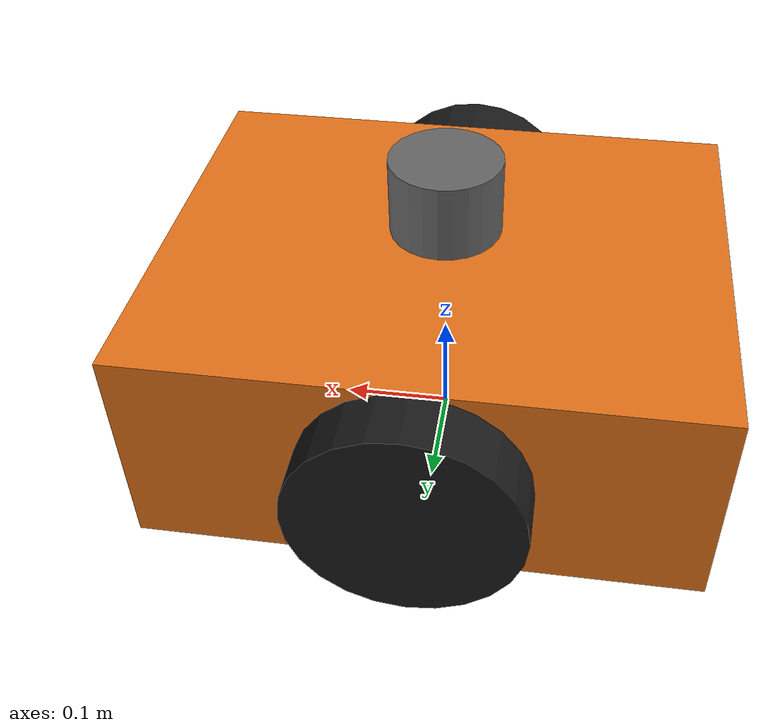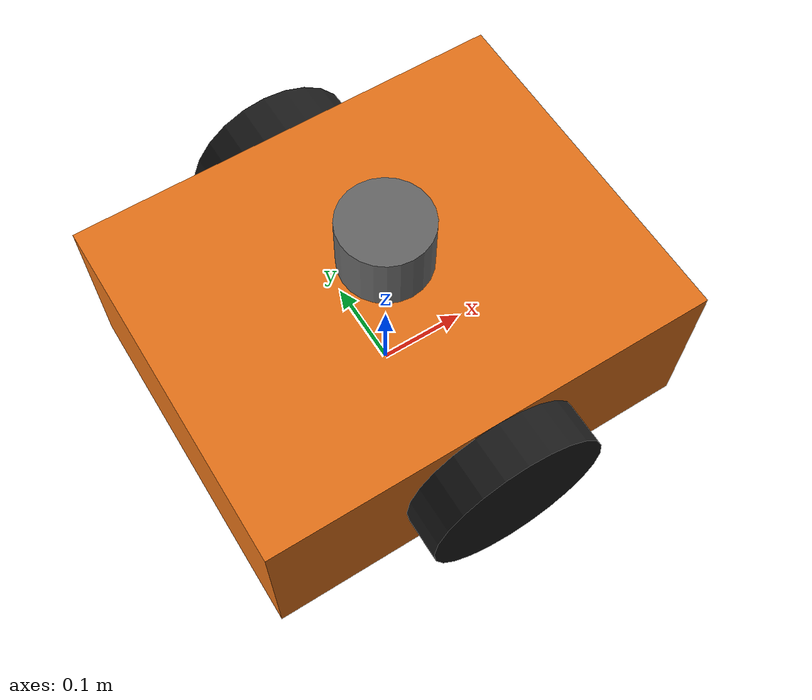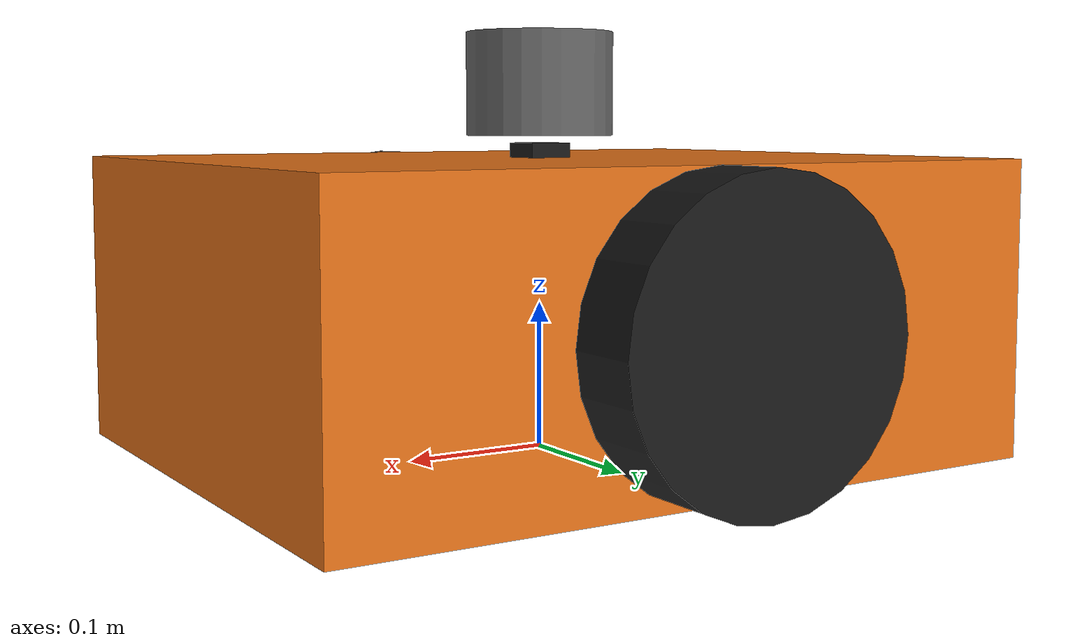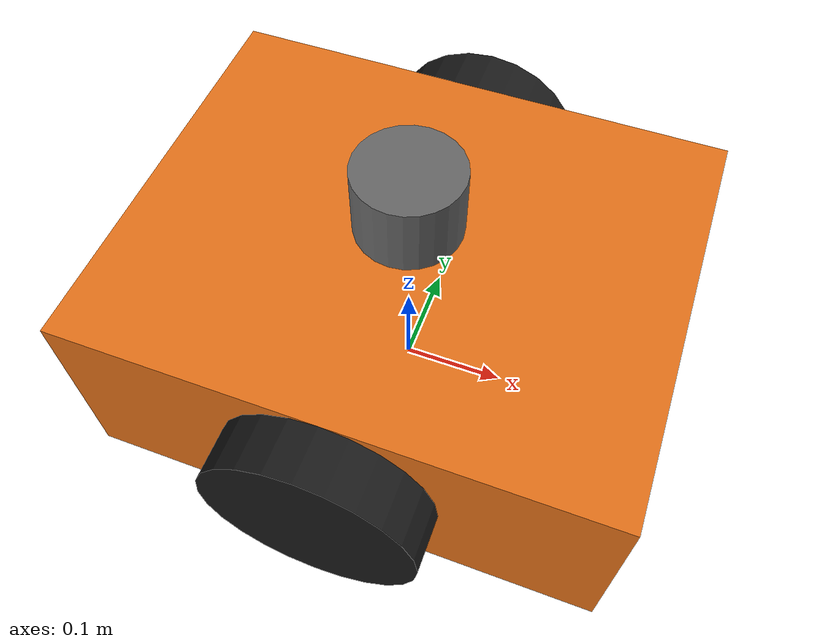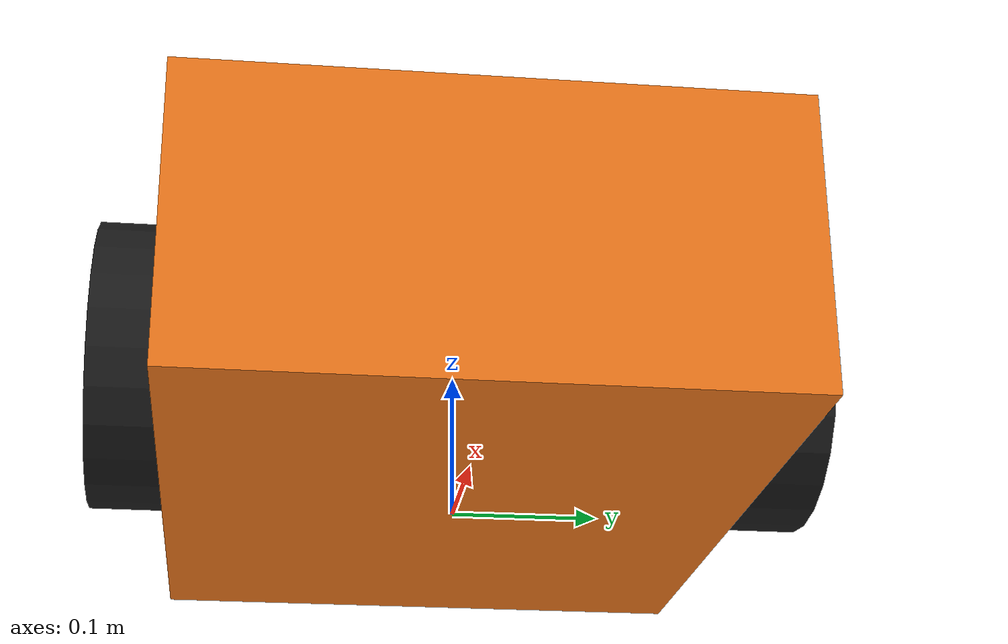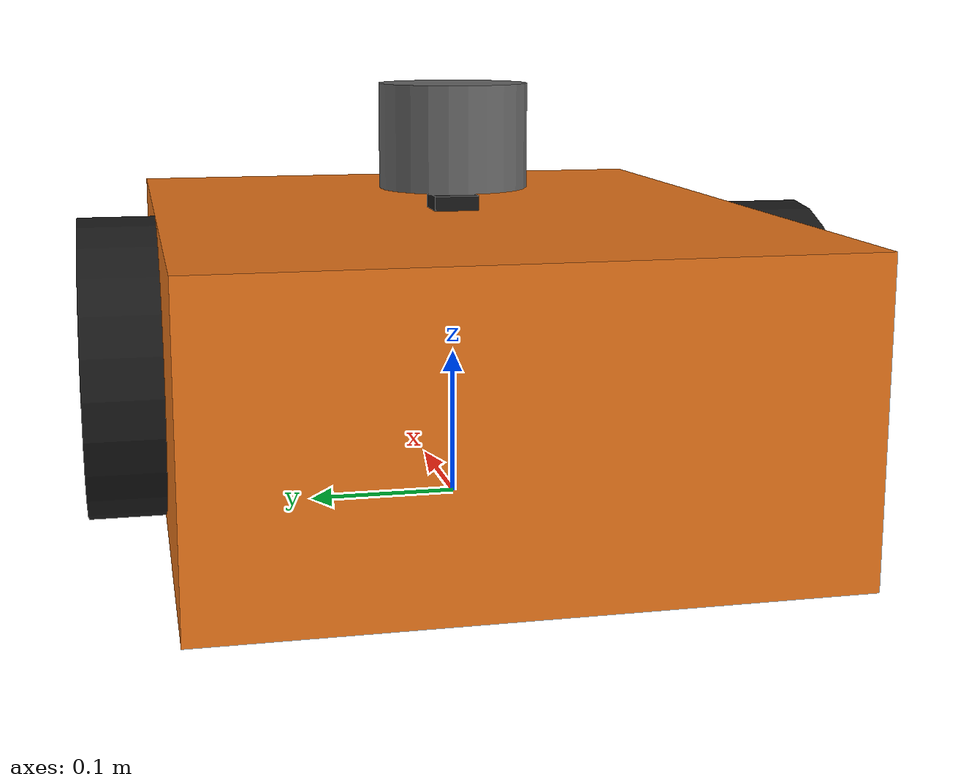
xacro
<?xml version="1.0"?>
<robot name="ddr_robot" xmlns:xacro="http://www.ros.org/wiki/xacro">

  <!-- ===================== Parameters ===================== -->
  <xacro:property name="chassis_len"    value="0.50"/>
  <xacro:property name="chassis_wid"    value="0.40"/>
  <xacro:property name="chassis_hei"    value="0.20"/>
  <xacro:property name="chassis_mass"   value="10.0"/>

  <xacro:property name="wheel_radius"   value="0.10"/>
  <xacro:property name="wheel_width"    value="0.05"/>
  <xacro:property name="wheel_mass"     value="1.0"/>
  <xacro:property name="wheel_sep"      value="0.45"/>   <!-- distance between wheel centers -->
  <xacro:property name="wheel_x_off"    value="0.0"/>

  <xacro:property name="caster_radius"  value="0.05"/>
  <xacro:property name="caster_mass"    value="0.2"/>

  <xacro:property name="base_z"         value="${wheel_radius}"/> <!-- chassis center height -->

  <material name="grey"><color rgba="0.4 0.4 0.4 1"/></material>
  <material name="black"><color rgba="0.1 0.1 0.1 1"/></material>
  <material name="orange"><color rgba="0.9 0.45 0.1 1"/></material>

  <!-- ===================== base_footprint / base_link ===================== -->
  <link name="base_footprint"/>

  <joint name="base_joint" type="fixed">
    <parent link="base_footprint"/>
    <child link="base_link"/>
    <origin xyz="0 0 ${base_z}" rpy="0 0 0"/>
  </joint>

  <link name="base_link">
    <inertial>
      <mass value="${chassis_mass}"/>
      <origin xyz="0 0 0" rpy="0 0 0"/>
      <inertia ixx="0.15" ixy="0" ixz="0" iyy="0.20" iyz="0" izz="0.25"/>
    </inertial>
    <visual>
      <origin xyz="0 0 0" rpy="0 0 0"/>
      <geometry><box size="${chassis_len} ${chassis_wid} ${chassis_hei}"/></geometry>
      <material name="orange"/>
    </visual>
    <collision>
      <origin xyz="0 0 0" rpy="0 0 0"/>
      <geometry><box size="${chassis_len} ${chassis_wid} ${chassis_hei}"/></geometry>
    </collision>
  </link>

  <!-- ===================== Drive wheel macro ===================== -->
  <xacro:macro name="drive_wheel" params="prefix y_reflect">
    <link name="${prefix}_wheel_link">
      <inertial>
        <mass value="${wheel_mass}"/>
        <origin xyz="0 0 0" rpy="1.5708 0 0"/>
        <inertia ixx="0.001" ixy="0" ixz="0" iyy="0.001" iyz="0" izz="0.001"/>
      </inertial>
      <visual>
        <origin xyz="0 0 0" rpy="1.5708 0 0"/>
        <geometry><cylinder radius="${wheel_radius}" length="${wheel_width}"/></geometry>
        <material name="black"/>
      </visual>
      <collision>
        <origin xyz="0 0 0" rpy="1.5708 0 0"/>
        <geometry><cylinder radius="${wheel_radius}" length="${wheel_width}"/></geometry>
      </collision>
    </link>

    <joint name="${prefix}_wheel_joint" type="continuous">
      <parent link="base_link"/>
      <child link="${prefix}_wheel_link"/>
      <origin xyz="${wheel_x_off} ${y_reflect * wheel_sep / 2} ${-base_z + wheel_radius}" rpy="0 0 0"/>
      <axis xyz="0 1 0"/>
      <dynamics friction="0.1" damping="0.01"/>
    </joint>
  </xacro:macro>

  <xacro:drive_wheel prefix="left"  y_reflect="1"/>
  <xacro:drive_wheel prefix="right" y_reflect="-1"/>

  <!-- ===================== Caster wheels (support, non-driven) ===================== -->
  <xacro:macro name="caster_wheel" params="prefix x_pos">
    <link name="${prefix}_caster_link">
      <inertial>
        <mass value="${caster_mass}"/>
        <origin xyz="0 0 0"/>
        <inertia ixx="0.0002" ixy="0" ixz="0" iyy="0.0002" iyz="0" izz="0.0002"/>
      </inertial>
      <visual>
        <origin xyz="0 0 0"/>
        <geometry><sphere radius="${caster_radius}"/></geometry>
        <material name="black"/>
      </visual>
      <collision>
        <origin xyz="0 0 0"/>
        <geometry><sphere radius="${caster_radius}"/></geometry>
      </collision>
    </link>
    <joint name="${prefix}_caster_joint" type="fixed">
      <parent link="base_link"/>
      <child link="${prefix}_caster_link"/>
      <origin xyz="${x_pos} 0 ${-base_z + caster_radius}" rpy="0 0 0"/>
    </joint>
  </xacro:macro>

  <xacro:caster_wheel prefix="front" x_pos="${chassis_len/2 - 0.05}"/>
  <xacro:caster_wheel prefix="rear"  x_pos="${-(chassis_len/2 - 0.05)}"/>

  <!-- ===================== 6-axis IMU ===================== -->
  <link name="imu_link">
    <inertial>
      <mass value="0.05"/>
      <inertia ixx="1e-5" ixy="0" ixz="0" iyy="1e-5" iyz="0" izz="1e-5"/>
    </inertial>
    <visual>
      <geometry><box size="0.03 0.03 0.02"/></geometry>
      <material name="black"/>
    </visual>
  </link>
  <joint name="imu_joint" type="fixed">
    <parent link="base_link"/>
    <child link="imu_link"/>
    <origin xyz="0 0 ${chassis_hei/2}" rpy="0 0 0"/>
  </joint>

  <gazebo reference="imu_link">
    <sensor name="imu_sensor" type="imu">
      <always_on>true</always_on>
      <update_rate>100</update_rate>
      <topic>imu</topic>
      <imu>
        <angular_velocity>
          <x><noise type="gaussian"><mean>0.0</mean><stddev>2e-4</stddev></noise></x>
          <y><noise type="gaussian"><mean>0.0</mean><stddev>2e-4</stddev></noise></y>
          <z><noise type="gaussian"><mean>0.0</mean><stddev>2e-4</stddev></noise></z>
        </angular_velocity>
        <linear_acceleration>
          <x><noise type="gaussian"><mean>0.0</mean><stddev>1.7e-2</stddev></noise></x>
          <y><noise type="gaussian"><mean>0.0</mean><stddev>1.7e-2</stddev></noise></y>
          <z><noise type="gaussian"><mean>0.0</mean><stddev>1.7e-2</stddev></noise></z>
        </linear_acceleration>
      </imu>
    </sensor>
  </gazebo>

  <!-- ===================== 16-channel 3D LiDAR ===================== -->
  <link name="lidar_link">
    <inertial>
      <mass value="0.3"/>
      <inertia ixx="1e-4" ixy="0" ixz="0" iyy="1e-4" iyz="0" izz="1e-4"/>
    </inertial>
    <visual>
      <geometry><cylinder radius="0.05" length="0.07"/></geometry>
      <material name="grey"/>
    </visual>
    <collision>
      <geometry><cylinder radius="0.05" length="0.07"/></geometry>
    </collision>
  </link>
  <joint name="lidar_joint" type="fixed">
    <parent link="base_link"/>
    <child link="lidar_link"/>
    <origin xyz="0 0 ${chassis_hei/2 + 0.05}" rpy="0 0 0"/>
  </joint>

  <gazebo reference="lidar_link">
    <sensor name="lidar_3d" type="gpu_lidar">
      <always_on>true</always_on>
      <update_rate>10</update_rate>
      <topic>scan</topic>
      <gz_frame_id>lidar_link</gz_frame_id>
      <lidar>
        <scan>
          <horizontal>
            <samples>440</samples>
            <resolution>1</resolution>
            <min_angle>-3.14159</min_angle>
            <max_angle>3.14159</max_angle>
          </horizontal>
          <vertical>
            <!-- 16 channels, ~30 deg vertical FOV (like a VLP-16) -->
            <samples>16</samples>
            <resolution>1</resolution>
            <min_angle>-0.2618</min_angle>
            <max_angle>0.2618</max_angle>
          </vertical>
        </scan>
        <range>
          <min>0.30</min>
          <max>30.0</max>
          <resolution>0.01</resolution>
        </range>
        <noise>
          <type>gaussian</type>
          <mean>0.0</mean>
          <stddev>0.01</stddev>
        </noise>
      </lidar>
      <visualize>false</visualize>
    </sensor>
  </gazebo>

  <!-- ===================== Differential drive + joint state plugins ===================== -->
  <gazebo>
    <plugin filename="gz-sim-diff-drive-system" name="gz::sim::systems::DiffDrive">
      <left_joint>left_wheel_joint</left_joint>
      <right_joint>right_wheel_joint</right_joint>
      <wheel_separation>${wheel_sep}</wheel_separation>
      <wheel_radius>${wheel_radius}</wheel_radius>
      <max_linear_acceleration>3.0</max_linear_acceleration>
      <max_angular_acceleration>3.0</max_angular_acceleration>
      <topic>cmd_vel</topic>
      <odom_topic>odom</odom_topic>
      <tf_topic>tf</tf_topic>
      <frame_id>odom</frame_id>
      <child_frame_id>base_footprint</child_frame_id>
      <odom_publish_frequency>50</odom_publish_frequency>
    </plugin>

    <plugin filename="gz-sim-joint-state-publisher-system" name="gz::sim::systems::JointStatePublisher">
      <topic>joint_states</topic>
    </plugin>

    <plugin filename="gz-sim-pose-publisher-system" name="gz::sim::systems::PosePublisher">
      <publish_link_pose>true</publish_link_pose>
      <publish_sensor_pose>false</publish_sensor_pose>
      <publish_collision_pose>false</publish_collision_pose>
      <publish_visual_pose>false</publish_visual_pose>
      <publish_nested_model_pose>true</publish_nested_model_pose>
      <use_pose_vector_msg>true</use_pose_vector_msg>
      <static_publisher>true</static_publisher>
      <static_update_frequency>1</static_update_frequency>
    </plugin>
  </gazebo>

</robot>
